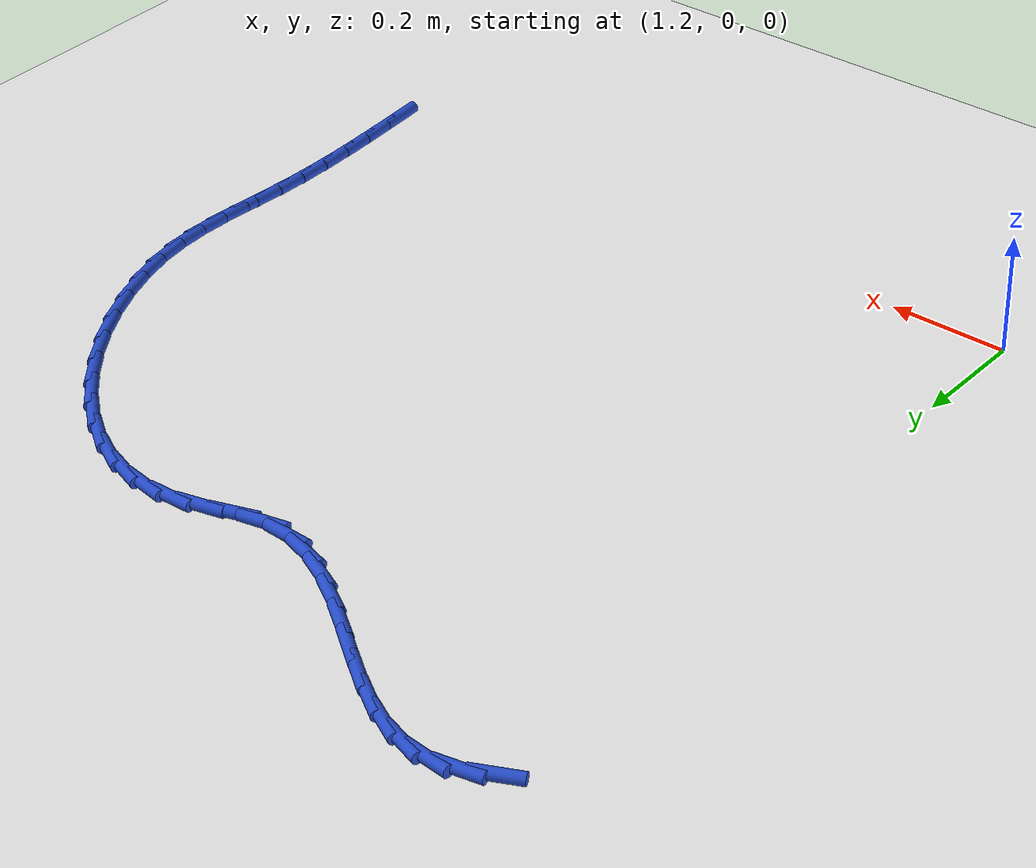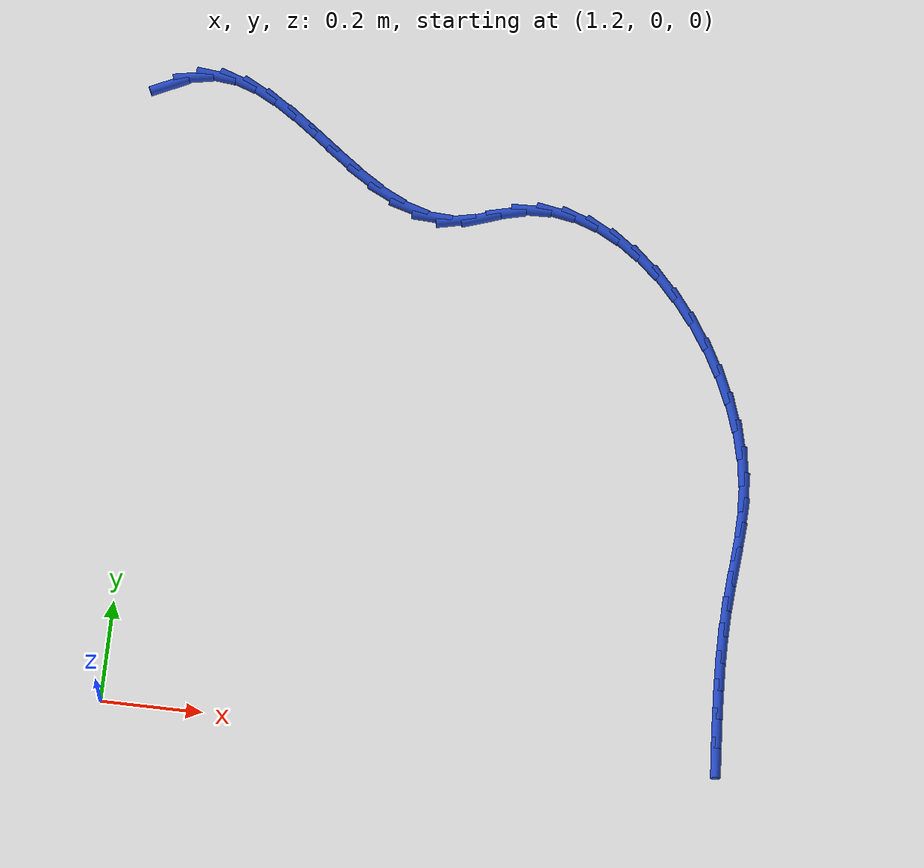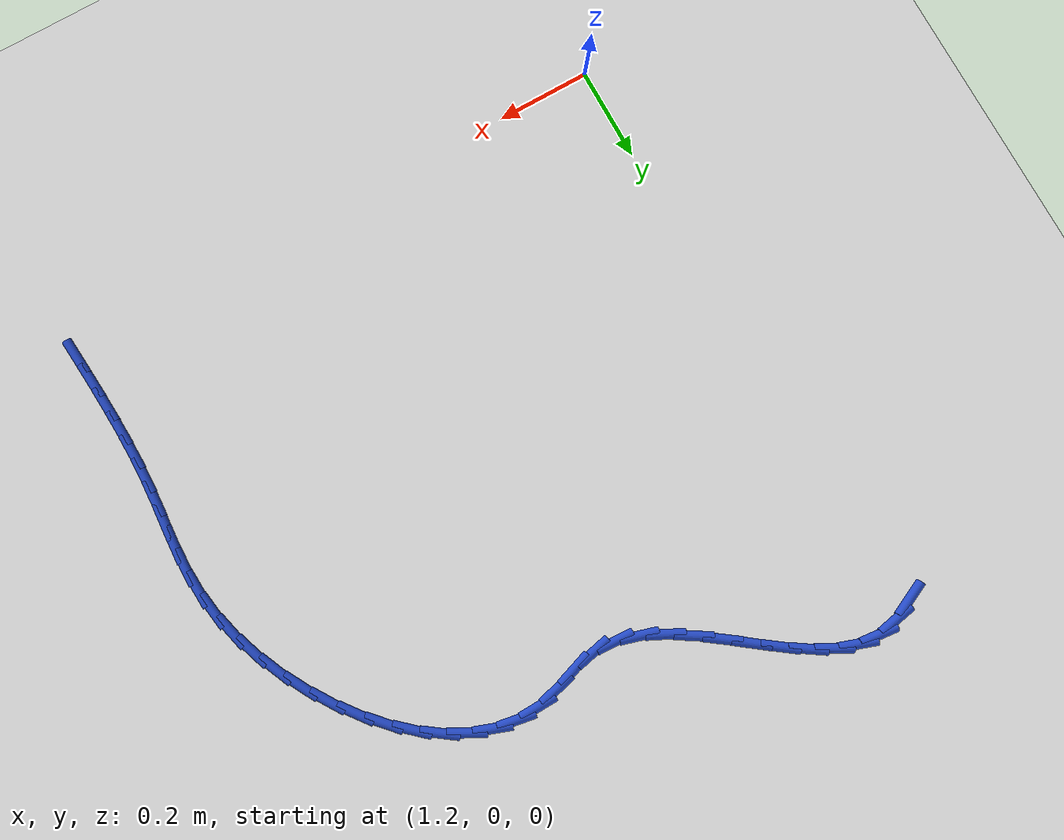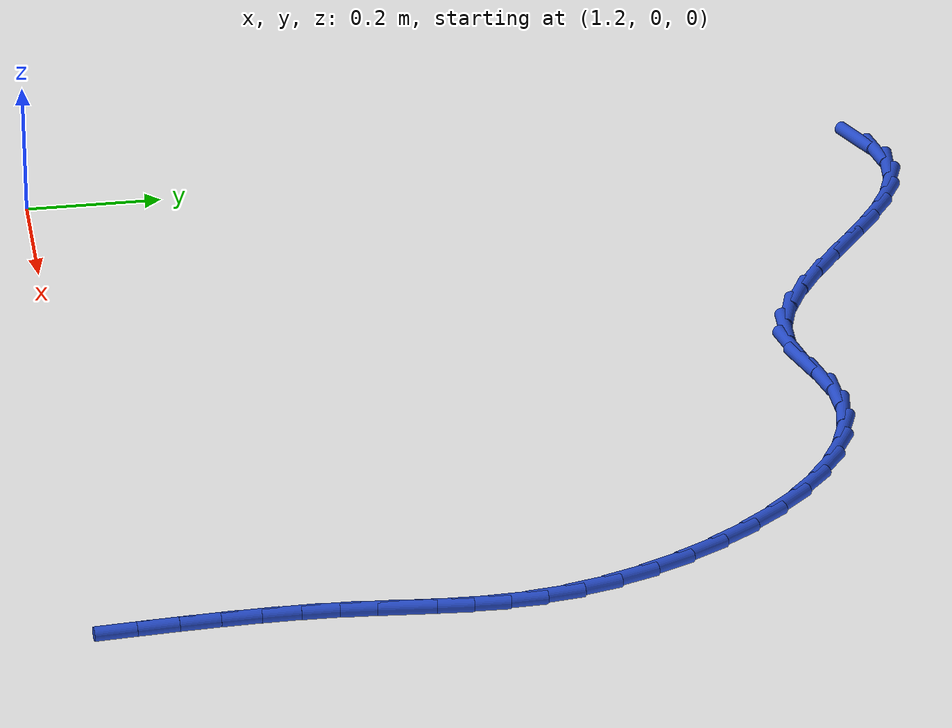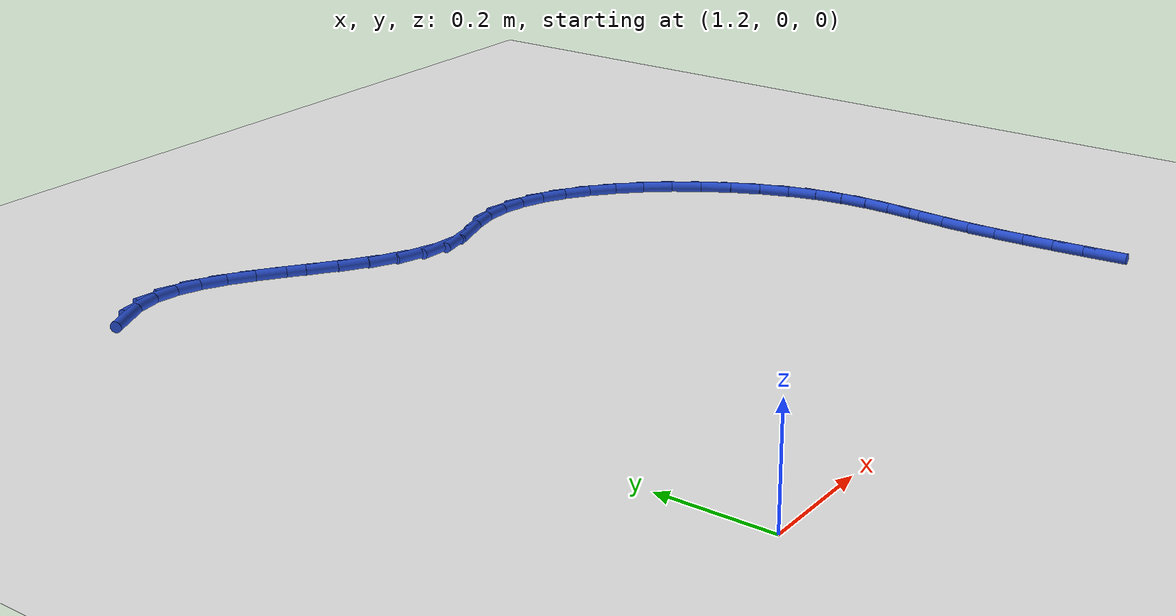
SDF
<sdf version="1.6">
 <world name="default">
  <model name="ground_plane">
   <static>1</static>
   <link name="link">
    <collision name="collision">
     <geometry><plane><normal>0 0 1</normal><size>100 100</size></plane></geometry>
     <surface><friction><ode><mu>100</mu><mu2>50</mu2></ode></friction></surface>
    </collision>
    <visual name="visual">
     <cast_shadows>0</cast_shadows>
     <geometry><plane><normal>0 0 1</normal><size>100 100</size></plane></geometry>
     <material>
      <script><uri>file://media/materials/scripts/gazebo.material</uri><name>Gazebo/WhiteGlow</name></script>
     </material>
    </visual>
   </link>
  </model>
  <model name="line">
   <link name="link_38">
    <pose>1.175567091482324 1.2548446321354563 0.01 0 1.57 0.4425715776363919</pose>
    <collision name="collision">
     <geometry><cylinder><radius>0.01</radius><length>0.08</length></cylinder></geometry>
    </collision>
    <visual name="visual">
     <material>
      <script><name>Gazebo/Blue</name><uri>file://media/materials/scripts/gazebo.material</uri></script>
     </material>
     <geometry><cylinder><radius>0.01</radius><length>0.08</length></cylinder></geometry>
    </visual>
   </link>
   <link name="link_39">
    <pose>1.2205749974550848 1.2761750431112902 0.01 0 1.57 0.18781690993796982</pose>
    <collision name="collision">
     <geometry><cylinder><radius>0.01</radius><length>0.08</length></cylinder></geometry>
    </collision>
    <visual name="visual">
     <material>
      <script><name>Gazebo/Blue</name><uri>file://media/materials/scripts/gazebo.material</uri></script>
     </material>
     <geometry><cylinder><radius>0.01</radius><length>0.08</length></cylinder></geometry>
    </visual>
   </link>
   <link name="link_40">
    <pose>1.265652699115217 1.2847423735206294 0.01 0 1.57 -0.10372344730545793</pose>
    <collision name="collision">
     <geometry><cylinder><radius>0.01</radius><length>0.08</length></cylinder></geometry>
    </collision>
    <visual name="visual">
     <material>
      <script><name>Gazebo/Blue</name><uri>file://media/materials/scripts/gazebo.material</uri></script>
     </material>
     <geometry><cylinder><radius>0.01</radius><length>0.08</length></cylinder></geometry>
    </visual>
   </link>
   <link name="link_41">
    <pose>1.3107957156700965 1.2800431197311006 0.01 0 1.57 -0.33225902819154934</pose>
    <collision name="collision">
     <geometry><cylinder><radius>0.01</radius><length>0.08</length></cylinder></geometry>
    </collision>
    <visual name="visual">
     <material>
      <script><name>Gazebo/Blue</name><uri>file://media/materials/scripts/gazebo.material</uri></script>
     </material>
     <geometry><cylinder><radius>0.01</radius><length>0.08</length></cylinder></geometry>
    </visual>
   </link>
   <link name="link_42">
    <pose>1.3560372550352864 1.2644324862540475 0.01 0 1.57 -0.48729063209119505</pose>
    <collision name="collision">
     <geometry><cylinder><radius>0.01</radius><length>0.08</length></cylinder></geometry>
    </collision>
    <visual name="visual">
     <material>
      <script><name>Gazebo/Blue</name><uri>file://media/materials/scripts/gazebo.material</uri></script>
     </material>
     <geometry><cylinder><radius>0.01</radius><length>0.08</length></cylinder></geometry>
    </visual>
   </link>
   <link name="link_43">
    <pose>1.4014121344962753 1.2403877491476336 0.01 0 1.57 -0.582503155691921</pose>
    <collision name="collision">
     <geometry><cylinder><radius>0.01</radius><length>0.08</length></cylinder></geometry>
    </collision>
    <visual name="visual">
     <material>
      <script><name>Gazebo/Blue</name><uri>file://media/materials/scripts/gazebo.material</uri></script>
     </material>
     <geometry><cylinder><radius>0.01</radius><length>0.08</length></cylinder></geometry>
    </visual>
   </link>
   <link name="link_44">
    <pose>1.446955171338551 1.2103861844700214 0.01 0 1.57 -0.6318105705020849</pose>
    <collision name="collision">
     <geometry><cylinder><radius>0.01</radius><length>0.08</length></cylinder></geometry>
    </collision>
    <visual name="visual">
     <material>
      <script><name>Gazebo/Blue</name><uri>file://media/materials/scripts/gazebo.material</uri></script>
     </material>
     <geometry><cylinder><radius>0.01</radius><length>0.08</length></cylinder></geometry>
    </visual>
   </link>
   <link name="link_45">
    <pose>1.4927011828475996 1.1769050682793745 0.01 0 1.57 -0.6434390186435228</pose>
    <collision name="collision">
     <geometry><cylinder><radius>0.01</radius><length>0.08</length></cylinder></geometry>
    </collision>
    <visual name="visual">
     <material>
      <script><name>Gazebo/Blue</name><uri>file://media/materials/scripts/gazebo.material</uri></script>
     </material>
     <geometry><cylinder><radius>0.01</radius><length>0.08</length></cylinder></geometry>
    </visual>
   </link>
   <link name="link_46">
    <pose>1.5386849863089096 1.1424216766338549 0.01 0 1.57 -0.6197926337899876</pose>
    <collision name="collision">
     <geometry><cylinder><radius>0.01</radius><length>0.08</length></cylinder></geometry>
    </collision>
    <visual name="visual">
     <material>
      <script><name>Gazebo/Blue</name><uri>file://media/materials/scripts/gazebo.material</uri></script>
     </material>
     <geometry><cylinder><radius>0.01</radius><length>0.08</length></cylinder></geometry>
    </visual>
   </link>
   <link name="link_47">
    <pose>1.5849413990079688 1.1094132855916274 0.01 0 1.57 -0.5578841990169563</pose>
    <collision name="collision">
     <geometry><cylinder><radius>0.01</radius><length>0.08</length></cylinder></geometry>
    </collision>
    <visual name="visual">
     <material>
      <script><name>Gazebo/Blue</name><uri>file://media/materials/scripts/gazebo.material</uri></script>
     </material>
     <geometry><cylinder><radius>0.01</radius><length>0.08</length></cylinder></geometry>
    </visual>
   </link>
   <link name="link_48">
    <pose>1.6315052382302642 1.0803571712108535 0.01 0 1.57 -0.4494526008905176</pose>
    <collision name="collision">
     <geometry><cylinder><radius>0.01</radius><length>0.08</length></cylinder></geometry>
    </collision>
    <visual name="visual">
     <material>
      <script><name>Gazebo/Blue</name><uri>file://media/materials/scripts/gazebo.material</uri></script>
     </material>
     <geometry><cylinder><radius>0.01</radius><length>0.08</length></cylinder></geometry>
    </visual>
   </link>
   <link name="link_49">
    <pose>1.678411321261283 1.0577306095496972 0.01 0 1.57 -0.28240609169446207</pose>
    <collision name="collision">
     <geometry><cylinder><radius>0.01</radius><length>0.08</length></cylinder></geometry>
    </collision>
    <visual name="visual">
     <material>
      <script><name>Gazebo/Blue</name><uri>file://media/materials/scripts/gazebo.material</uri></script>
     </material>
     <geometry><cylinder><radius>0.01</radius><length>0.08</length></cylinder></geometry>
    </visual>
   </link>
   <link name="link_50">
    <pose>1.7256944653865132 1.0440108766663214 0.01 0 1.57 -0.04893097034756909</pose>
    <collision name="collision">
     <geometry><cylinder><radius>0.01</radius><length>0.08</length></cylinder></geometry>
    </collision>
    <visual name="visual">
     <material>
      <script><name>Gazebo/Blue</name><uri>file://media/materials/scripts/gazebo.material</uri></script>
     </material>
     <geometry><cylinder><radius>0.01</radius><length>0.08</length></cylinder></geometry>
    </visual>
   </link>
   <link name="link_51">
    <pose>1.7733894878914425 1.0416752486188887 0.01 0 1.57 0.21309796185872423</pose>
    <collision name="collision">
     <geometry><cylinder><radius>0.01</radius><length>0.08</length></cylinder></geometry>
    </collision>
    <visual name="visual">
     <material>
      <script><name>Gazebo/Blue</name><uri>file://media/materials/scripts/gazebo.material</uri></script>
     </material>
     <geometry><cylinder><radius>0.01</radius><length>0.08</length></cylinder></geometry>
    </visual>
   </link>
   <link name="link_52">
    <pose>1.8215212440681692 1.052090156665066 0.01 0 1.57 0.3240529821937707</pose>
    <collision name="collision">
     <geometry><cylinder><radius>0.01</radius><length>0.08</length></cylinder></geometry>
    </collision>
    <visual name="visual">
     <material>
      <script><name>Gazebo/Blue</name><uri>file://media/materials/scripts/gazebo.material</uri></script>
     </material>
     <geometry><cylinder><radius>0.01</radius><length>0.08</length></cylinder></geometry>
    </visual>
   </link>
   <link name="link_53">
    <pose>1.8700407427818067 1.0683875436172379 0.01 0 1.57 0.23576746180758953</pose>
    <collision name="collision">
     <geometry><cylinder><radius>0.01</radius><length>0.08</length></cylinder></geometry>
    </collision>
    <visual name="visual">
     <material>
      <script><name>Gazebo/Blue</name><uri>file://media/materials/scripts/gazebo.material</uri></script>
     </material>
     <geometry><cylinder><radius>0.01</radius><length>0.08</length></cylinder></geometry>
    </visual>
   </link>
   <link name="link_54">
    <pose>1.9188618709374892 1.0801161024042396 0.01 0 1.57 0.029143896271335196</pose>
    <collision name="collision">
     <geometry><cylinder><radius>0.01</radius><length>0.08</length></cylinder></geometry>
    </collision>
    <visual name="visual">
     <material>
      <script><name>Gazebo/Blue</name><uri>file://media/materials/scripts/gazebo.material</uri></script>
     </material>
     <geometry><cylinder><radius>0.01</radius><length>0.08</length></cylinder></geometry>
    </visual>
   </link>
   <link name="link_55">
    <pose>1.9677392440365904 1.0815409829340532 0.01 0 1.57 -0.17071934907159508</pose>
    <collision name="collision">
     <geometry><cylinder><radius>0.01</radius><length>0.08</length></cylinder></geometry>
    </collision>
    <visual name="visual">
     <material>
      <script><name>Gazebo/Blue</name><uri>file://media/materials/scripts/gazebo.material</uri></script>
     </material>
     <geometry><cylinder><radius>0.01</radius><length>0.08</length></cylinder></geometry>
    </visual>
   </link>
   <link name="link_56">
    <pose>2.0162172087202537 1.0731835049948966 0.01 0 1.57 -0.34649386268864046</pose>
    <collision name="collision">
     <geometry><cylinder><radius>0.01</radius><length>0.08</length></cylinder></geometry>
    </collision>
    <visual name="visual">
     <material>
      <script><name>Gazebo/Blue</name><uri>file://media/materials/scripts/gazebo.material</uri></script>
     </material>
     <geometry><cylinder><radius>0.01</radius><length>0.08</length></cylinder></geometry>
    </visual>
   </link>
   <link name="link_57">
    <pose>2.0638256934931287 1.0559939739658677 0.01 0 1.57 -0.49657212601732936</pose>
    <collision name="collision">
     <geometry><cylinder><radius>0.01</radius><length>0.08</length></cylinder></geometry>
    </collision>
    <visual name="visual">
     <material>
      <script><name>Gazebo/Blue</name><uri>file://media/materials/scripts/gazebo.material</uri></script>
     </material>
     <geometry><cylinder><radius>0.01</radius><length>0.08</length></cylinder></geometry>
    </visual>
   </link>
   <link name="link_58">
    <pose>2.1100946268598677 1.030922695226064 0.01 0 1.57 -0.6239047964831007</pose>
    <collision name="collision">
     <geometry><cylinder><radius>0.01</radius><length>0.08</length></cylinder></geometry>
    </collision>
    <visual name="visual">
     <material>
      <script><name>Gazebo/Blue</name><uri>file://media/materials/scripts/gazebo.material</uri></script>
     </material>
     <geometry><cylinder><radius>0.01</radius><length>0.08</length></cylinder></geometry>
    </visual>
   </link>
   <link name="link_59">
    <pose>2.1545539373251206 0.9989199741545837 0.01 0 1.57 -0.7331058571873689</pose>
    <collision name="collision">
     <geometry><cylinder><radius>0.01</radius><length>0.08</length></cylinder></geometry>
    </collision>
    <visual name="visual">
     <material>
      <script><name>Gazebo/Blue</name><uri>file://media/materials/scripts/gazebo.material</uri></script>
     </material>
     <geometry><cylinder><radius>0.01</radius><length>0.08</length></cylinder></geometry>
    </visual>
   </link>
   <link name="link_60">
    <pose>2.1967335533935386 0.9609361161305241 0.01 0 1.57 -0.828852620681469</pose>
    <collision name="collision">
     <geometry><cylinder><radius>0.01</radius><length>0.08</length></cylinder></geometry>
    </collision>
    <visual name="visual">
     <material>
      <script><name>Gazebo/Blue</name><uri>file://media/materials/scripts/gazebo.material</uri></script>
     </material>
     <geometry><cylinder><radius>0.01</radius><length>0.08</length></cylinder></geometry>
    </visual>
   </link>
   <link name="link_61">
    <pose>2.236163403569772 0.9179214265329823 0.01 0 1.57 -0.9153285390216788</pose>
    <collision name="collision">
     <geometry><cylinder><radius>0.01</radius><length>0.08</length></cylinder></geometry>
    </collision>
    <visual name="visual">
     <material>
      <script><name>Gazebo/Blue</name><uri>file://media/materials/scripts/gazebo.material</uri></script>
     </material>
     <geometry><cylinder><radius>0.01</radius><length>0.08</length></cylinder></geometry>
    </visual>
   </link>
   <link name="link_62">
    <pose>2.2723734163584717 0.8708262107410567 0.01 0 1.57 -0.9961927366485599</pose>
    <collision name="collision">
     <geometry><cylinder><radius>0.01</radius><length>0.08</length></cylinder></geometry>
    </collision>
    <visual name="visual">
     <material>
      <script><name>Gazebo/Blue</name><uri>file://media/materials/scripts/gazebo.material</uri></script>
     </material>
     <geometry><cylinder><radius>0.01</radius><length>0.08</length></cylinder></geometry>
    </visual>
   </link>
   <link name="link_63">
    <pose>2.3048935202642897 0.8206007741338441 0.01 0 1.57 -1.0747588463839106</pose>
    <collision name="collision">
     <geometry><cylinder><radius>0.01</radius><length>0.08</length></cylinder></geometry>
    </collision>
    <visual name="visual">
     <material>
      <script><name>Gazebo/Blue</name><uri>file://media/materials/scripts/gazebo.material</uri></script>
     </material>
     <geometry><cylinder><radius>0.01</radius><length>0.08</length></cylinder></geometry>
    </visual>
   </link>
   <link name="link_64">
    <pose>2.3332536437918754 0.7681954220904431 0.01 0 1.57 -1.1542498780535932</pose>
    <collision name="collision">
     <geometry><cylinder><radius>0.01</radius><length>0.08</length></cylinder></geometry>
    </collision>
    <visual name="visual">
     <material>
      <script><name>Gazebo/Blue</name><uri>file://media/materials/scripts/gazebo.material</uri></script>
     </material>
     <geometry><cylinder><radius>0.01</radius><length>0.08</length></cylinder></geometry>
    </visual>
   </link>
   <link name="link_65">
    <pose>2.3569837154458795 0.7145604599899507 0.01 0 1.57 -1.2380934578223823</pose>
    <collision name="collision">
     <geometry><cylinder><radius>0.01</radius><length>0.08</length></cylinder></geometry>
    </collision>
    <visual name="visual">
     <material>
      <script><name>Gazebo/Blue</name><uri>file://media/materials/scripts/gazebo.material</uri></script>
     </material>
     <geometry><cylinder><radius>0.01</radius><length>0.08</length></cylinder></geometry>
    </visual>
   </link>
   <link name="link_66">
    <pose>2.3756136637309546 0.6606461932114642 0.01 0 1.57 -1.3302605839326542</pose>
    <collision name="collision">
     <geometry><cylinder><radius>0.01</radius><length>0.08</length></cylinder></geometry>
    </collision>
    <visual name="visual">
     <material>
      <script><name>Gazebo/Blue</name><uri>file://media/materials/scripts/gazebo.material</uri></script>
     </material>
     <geometry><cylinder><radius>0.01</radius><length>0.08</length></cylinder></geometry>
    </visual>
   </link>
   <link name="link_67">
    <pose>2.3886734171517503 0.6074029271340823 0.01 0 1.57 -1.4332412111913022</pose>
    <collision name="collision">
     <geometry><cylinder><radius>0.01</radius><length>0.08</length></cylinder></geometry>
    </collision>
    <visual name="visual">
     <material>
      <script><name>Gazebo/Blue</name><uri>file://media/materials/scripts/gazebo.material</uri></script>
     </material>
     <geometry><cylinder><radius>0.01</radius><length>0.08</length></cylinder></geometry>
    </visual>
   </link>
   <link name="link_68">
    <pose>2.3958355720449203 0.5556642107099964 0.01 0 1.57 -1.5280895810811743</pose>
    <collision name="collision">
     <geometry><cylinder><radius>0.01</radius><length>0.08</length></cylinder></geometry>
    </collision>
    <visual name="visual">
     <material>
      <script><name>Gazebo/Blue</name><uri>file://media/materials/scripts/gazebo.material</uri></script>
     </material>
     <geometry><cylinder><radius>0.01</radius><length>0.08</length></cylinder></geometry>
    </visual>
   </link>
   <link name="link_69">
    <pose>2.397989135031883 0.5052681076688 0.01 0 1.57 1.5436450222899472</pose>
    <collision name="collision">
     <geometry><cylinder><radius>0.01</radius><length>0.08</length></cylinder></geometry>
    </collision>
    <visual name="visual">
     <material>
      <script><name>Gazebo/Blue</name><uri>file://media/materials/scripts/gazebo.material</uri></script>
     </material>
     <geometry><cylinder><radius>0.01</radius><length>0.08</length></cylinder></geometry>
    </visual>
   </link>
   <link name="link_70">
    <pose>2.396638858285217 0.4555487682129303 0.01 0 1.57 1.5036188367684367</pose>
    <collision name="collision">
     <geometry><cylinder><radius>0.01</radius><length>0.08</length></cylinder></geometry>
    </collision>
    <visual name="visual">
     <material>
      <script><name>Gazebo/Blue</name><uri>file://media/materials/scripts/gazebo.material</uri></script>
     </material>
     <geometry><cylinder><radius>0.01</radius><length>0.08</length></cylinder></geometry>
    </visual>
   </link>
   <link name="link_71">
    <pose>2.393294275469465 0.4058364294698929 0.01 0 1.57 1.4949254189355496</pose>
    <collision name="collision">
     <geometry><cylinder><radius>0.01</radius><length>0.08</length></cylinder></geometry>
    </collision>
    <visual name="visual">
     <material>
      <script><name>Gazebo/Blue</name><uri>file://media/materials/scripts/gazebo.material</uri></script>
     </material>
     <geometry><cylinder><radius>0.01</radius><length>0.08</length></cylinder></geometry>
    </visual>
   </link>
   <link name="link_72">
    <pose>2.389464920249171 0.3554613285671945 0.01 0 1.57 1.5165648073472573</pose>
    <collision name="collision">
     <geometry><cylinder><radius>0.01</radius><length>0.08</length></cylinder></geometry>
    </collision>
    <visual name="visual">
     <material>
      <script><name>Gazebo/Blue</name><uri>file://media/materials/scripts/gazebo.material</uri></script>
     </material>
     <geometry><cylinder><radius>0.01</radius><length>0.08</length></cylinder></geometry>
    </visual>
   </link>
   <link name="link_73">
    <pose>2.386658048036832 0.3037548675121264 0.01 0 1.57 1.5558300991698204</pose>
    <collision name="collision">
     <geometry><cylinder><radius>0.01</radius><length>0.08</length></cylinder></geometry>
    </collision>
    <visual name="visual">
     <material>
      <script><name>Gazebo/Blue</name><uri>file://media/materials/scripts/gazebo.material</uri></script>
     </material>
     <geometry><cylinder><radius>0.01</radius><length>0.08</length></cylinder></geometry>
    </visual>
   </link>
   <link name="link_74">
    <pose>2.385858205742414 0.25031571135257835 0.01 0 1.57 -1.5525078734038376</pose>
    <collision name="collision">
     <geometry><cylinder><radius>0.01</radius><length>0.08</length></cylinder></geometry>
    </collision>
    <visual name="visual">
     <material>
      <script><name>Gazebo/Blue</name><uri>file://media/materials/scripts/gazebo.material</uri></script>
     </material>
     <geometry><cylinder><radius>0.01</radius><length>0.08</length></cylinder></geometry>
    </visual>
   </link>
   <link name="link_75">
    <pose>2.386863571770721 0.19534912030835666 0.01 0 1.57 -1.52732123186851</pose>
    <collision name="collision">
     <geometry><cylinder><radius>0.01</radius><length>0.08</length></cylinder></geometry>
    </collision>
    <visual name="visual">
     <material>
      <script><name>Gazebo/Blue</name><uri>file://media/materials/scripts/gazebo.material</uri></script>
     </material>
     <geometry><cylinder><radius>0.01</radius><length>0.08</length></cylinder></geometry>
    </visual>
   </link>
   <link name="link_76">
    <pose>2.38930863315938 0.13914405067901345 0.01 0 1.57 -1.509299845566224</pose>
    <collision name="collision">
     <geometry><cylinder><radius>0.01</radius><length>0.08</length></cylinder></geometry>
    </collision>
    <visual name="visual">
     <material>
      <script><name>Gazebo/Blue</name><uri>file://media/materials/scripts/gazebo.material</uri></script>
     </material>
     <geometry><cylinder><radius>0.01</radius><length>0.08</length></cylinder></geometry>
    </visual>
   </link>
   <link name="link_77">
    <pose>2.392827876946014 0.08198945876410216 0.01 0 1.57 -1.4977981564269176</pose>
    <collision name="collision">
     <geometry><cylinder><radius>0.01</radius><length>0.08</length></cylinder></geometry>
    </collision>
    <visual name="visual">
     <material>
      <script><name>Gazebo/Blue</name><uri>file://media/materials/scripts/gazebo.material</uri></script>
     </material>
     <geometry><cylinder><radius>0.01</radius><length>0.08</length></cylinder></geometry>
    </visual>
   </link>
   <link name="link_78">
    <pose>2.397055790168252 0.024174300863174444 0.01 0 1.57 -1.4923987602151094</pose>
    <collision name="collision">
     <geometry><cylinder><radius>0.01</radius><length>0.08</length></cylinder></geometry>
    </collision>
    <visual name="visual">
     <material>
      <script><name>Gazebo/Blue</name><uri>file://media/materials/scripts/gazebo.material</uri></script>
     </material>
     <geometry><cylinder><radius>0.01</radius><length>0.08</length></cylinder></geometry>
    </visual>
   </link>
  </model>
 </world>
</sdf>
